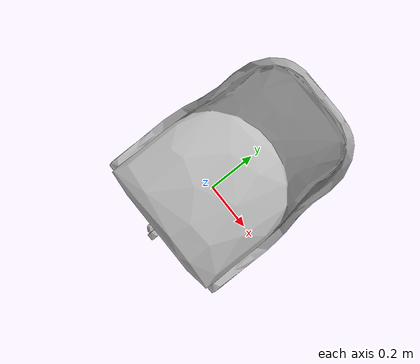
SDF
<sdf version="1.6">
	<model name="HomeOfficeDeskChairs_Ocb2e8b1d1141_lod0">
		<link name="main_link">
			<visual name="visual_RootNode">
				<geometry>
					<mesh>
						<uri>model://HomeOfficeDeskChairs_Ocb2e8b1d1141_lod0/meshes/visual_RootNode.dae</uri>
					</mesh>
				</geometry>
			</visual>
			<collision name="collision_RootNode_lod0_0">
				<geometry>
					<mesh>
						<uri>model://HomeOfficeDeskChairs_Ocb2e8b1d1141_lod0/meshes/collision_RootNode_lod0_0.dae</uri>
					</mesh>
				</geometry>
			</collision>
		</link>
	</model>
</sdf>
